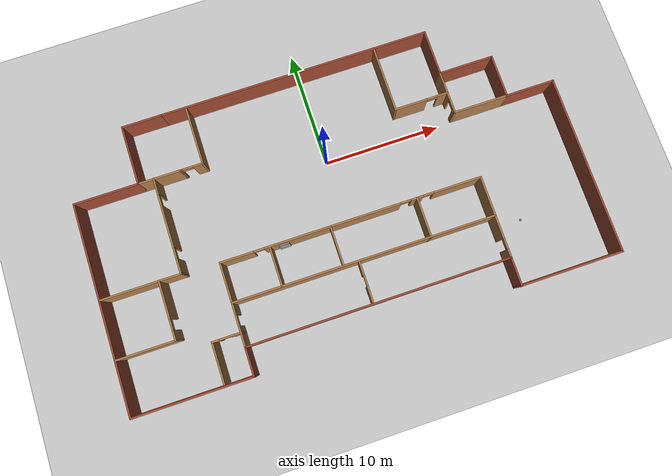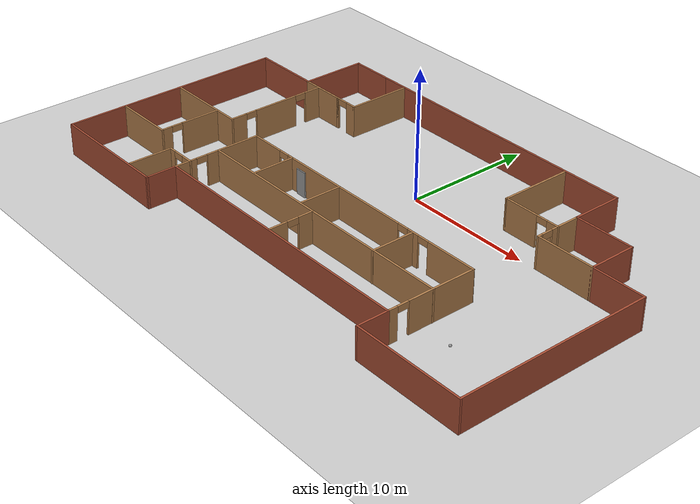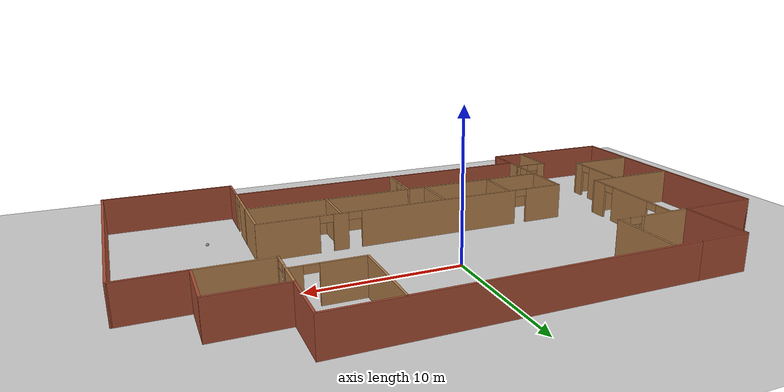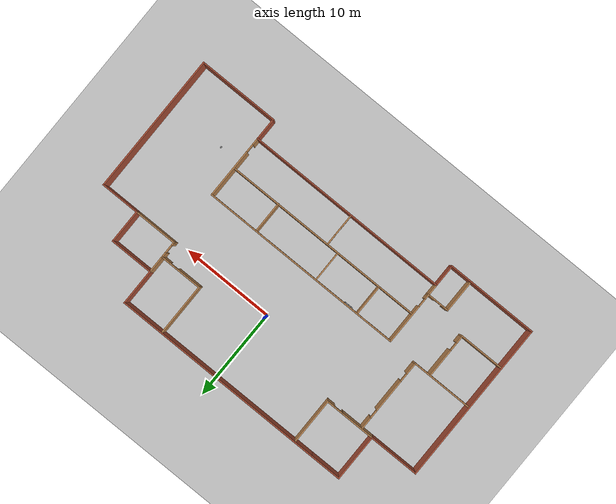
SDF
<sdf version="1.7">
 <world name="default">
  <light name="sun" type="directional">
   <pose>0 0 10 0 -0 0</pose>
   <diffuse>0.8 0.8 0.8 1</diffuse>
   <specular>0.2 0.2 0.2 1</specular>
   <attenuation>
    <range>1000</range>
    <constant>0.9</constant>
    <linear>0.01</linear>
    <quadratic>0.001</quadratic>
   </attenuation>
   <direction>-0.5 0.1 -0.9</direction>
   <spot><inner_angle>0</inner_angle><outer_angle>0</outer_angle><falloff>0</falloff></spot>
  </light>
  <model name="ground_plane">
   <static>1</static>
   <link name="link">
    <collision name="collision">
     <geometry><plane><normal>0 0 1</normal><size>100 100</size></plane></geometry>
     <surface>
      <contact><collide_bitmask>65535</collide_bitmask></contact>
      <friction><ode><mu>100</mu><mu2>50</mu2></ode></friction>
     </surface>
    </collision>
    <visual name="visual">
     <cast_shadows>0</cast_shadows>
     <geometry><plane><normal>0 0 1</normal><size>100 100</size></plane></geometry>
     <material>
      <script><uri>file://media/materials/scripts/gazebo.material</uri><name>Gazebo/Grey</name></script>
     </material>
    </visual>
   </link>
  </model>
  <gravity>0 0 -9.8</gravity>
  <magnetic_field>6e-06 2.3e-05 -4.2e-05</magnetic_field>
  <atmosphere type="adiabatic"/>
  <physics type="ode">
   <max_step_size>0.001</max_step_size>
   <real_time_factor>1</real_time_factor>
   <real_time_update_rate>1000</real_time_update_rate>
  </physics>
  <scene><ambient>0.4 0.4 0.4 1</ambient><background>0.7 0.7 0.7 1</background><shadows>1</shadows></scene>
  <spherical_coordinates>
   <surface_model>EARTH_WGS84</surface_model>
   <latitude_deg>0</latitude_deg>
   <longitude_deg>0</longitude_deg>
   <elevation>0</elevation>
   <heading_deg>0</heading_deg>
  </spherical_coordinates>
  <model name="model">
   <pose>-0.297809 -3.68836 0 0 -0 0</pose>
   <link name="Door_8">
    <collision name="Door_8_Collision">
     <geometry><box><size>0.9 0.17 2</size></box></geometry>
     <pose>0 0 1 0 -0 0</pose>
    </collision>
    <visual name="Door_8_Visual">
     <pose>0 0 1 0 -0 0</pose>
     <geometry><box><size>0.9 0.17 2</size></box></geometry>
     <material>
      <script><uri>file://media/materials/scripts/gazebo.material</uri><name>Gazebo/Grey</name></script>
     </material>
    </visual>
    <pose>-5.16966 -2.07672 0 0 -0 0</pose>
   </link>
   <link name="Wall_34">
    <collision name="Wall_34_Collision">
     <geometry><box><size>23.2038 0.15 2.5</size></box></geometry>
     <pose>0 0 1.25 0 -0 0</pose>
    </collision>
    <visual name="Wall_34_Visual">
     <pose>0 0 1.25 0 -0 0</pose>
     <geometry><box><size>23.2038 0.15 2.5</size></box></geometry>
     <material>
      <script><uri>file://media/materials/scripts/gazebo.material</uri><name>Gazebo/Bricks</name></script>
      <ambient>0.760784 0.662745 0.627451 1</ambient>
     </material>
     <meta><layer>0</layer></meta>
    </visual>
    <pose>0.04806 11.275 0 0 -0 1.2e-05</pose>
   </link>
   <link name="Wall_36">
    <collision name="Wall_36_Collision">
     <geometry><box><size>4 0.15 2.5</size></box></geometry>
     <pose>0 0 1.25 0 -0 0</pose>
    </collision>
    <visual name="Wall_36_Visual">
     <pose>0 0 1.25 0 -0 0</pose>
     <geometry><box><size>4 0.15 2.5</size></box></geometry>
     <material>
      <script><uri>file://media/materials/scripts/gazebo.material</uri><name>Gazebo/Bricks</name></script>
      <ambient>0.760784 0.662745 0.627451 1</ambient>
     </material>
     <meta><layer>0</layer></meta>
    </visual>
    <pose>11.5751 9.35 0 0 0 -1.57075</pose>
   </link>
   <link name="Wall_37">
    <collision name="Wall_37_Collision">
     <geometry><box><size>4.74984 0.15 2.5</size></box></geometry>
     <pose>0 0 1.25 0 -0 0</pose>
    </collision>
    <visual name="Wall_37_Visual">
     <pose>0 0 1.25 0 -0 0</pose>
     <geometry><box><size>4.74984 0.15 2.5</size></box></geometry>
     <material>
      <script><uri>file://media/materials/scripts/gazebo.material</uri><name>Gazebo/Bricks</name></script>
      <ambient>0.760784 0.662745 0.627451 1</ambient>
     </material>
     <meta><layer>0</layer></meta>
    </visual>
    <pose>13.8751 7.425 0 0 -0 6.1e-05</pose>
   </link>
   <link name="Wall_38">
    <collision name="Wall_38_Collision">
     <geometry><box><size>3.75 0.15 2.5</size></box></geometry>
     <pose>0 0 1.25 0 -0 0</pose>
    </collision>
    <visual name="Wall_38_Visual">
     <pose>0 0 1.25 0 -0 0</pose>
     <geometry><box><size>3.75 0.15 2.5</size></box></geometry>
     <material>
      <script><uri>file://media/materials/scripts/gazebo.material</uri><name>Gazebo/Bricks</name></script>
      <ambient>0.760784 0.662745 0.627451 1</ambient>
     </material>
     <meta><layer>0</layer></meta>
    </visual>
    <pose>16.1751 5.625 0 0 0 -1.57075</pose>
   </link>
   <link name="Wall_39">
    <collision name="Wall_39_Collision">
     <geometry><box><size>4.25 0.15 2.5</size></box></geometry>
     <pose>0 0 1.25 0 -0 0</pose>
    </collision>
    <visual name="Wall_39_Visual">
     <pose>0 0 1.25 0 -0 0</pose>
     <geometry><box><size>4.25 0.15 2.5</size></box></geometry>
     <material>
      <script><uri>file://media/materials/scripts/gazebo.material</uri><name>Gazebo/Bricks</name></script>
      <ambient>0.760784 0.662745 0.627451 1</ambient>
     </material>
     <meta><layer>0</layer></meta>
    </visual>
    <pose>18.2251 3.825 0 0 -0 6.9e-05</pose>
   </link>
   <link name="Wall_40">
    <collision name="Wall_40_Collision">
     <geometry><box><size>15.25 0.15 2.5</size></box></geometry>
     <pose>0 0 1.25 0 -0 0</pose>
    </collision>
    <visual name="Wall_40_Visual">
     <pose>0 0 1.25 0 -0 0</pose>
     <geometry><box><size>15.25 0.15 2.5</size></box></geometry>
     <material>
      <script><uri>file://media/materials/scripts/gazebo.material</uri><name>Gazebo/Bricks</name></script>
      <ambient>0.760784 0.662745 0.627451 1</ambient>
     </material>
     <meta><layer>0</layer></meta>
    </visual>
    <pose>20.275 -3.72486 0 0 0 -1.5708</pose>
   </link>
   <link name="Wall_41">
    <collision name="Wall_41_Collision">
     <geometry><box><size>8.75 0.15 2.5</size></box></geometry>
     <pose>0 0 1.25 0 -0 0</pose>
    </collision>
    <visual name="Wall_41_Visual">
     <pose>0 0 1.25 0 -0 0</pose>
     <geometry><box><size>8.75 0.15 2.5</size></box></geometry>
     <material>
      <script><uri>file://media/materials/scripts/gazebo.material</uri><name>Gazebo/Bricks</name></script>
      <ambient>0.760784 0.662745 0.627451 1</ambient>
     </material>
     <meta><layer>0</layer></meta>
    </visual>
    <pose>15.975 -11.2749 0 0 -0 3.14159</pose>
   </link>
   <link name="Wall_42">
    <collision name="Wall_42_Collision">
     <geometry><box><size>2.5 0.15 2.5</size></box></geometry>
     <pose>0 0 1.25 0 -0 0</pose>
    </collision>
    <visual name="Wall_42_Visual">
     <pose>0 0 1.25 0 -0 0</pose>
     <geometry><box><size>2.5 0.15 2.5</size></box></geometry>
     <material>
      <script><uri>file://media/materials/scripts/gazebo.material</uri><name>Gazebo/Bricks</name></script>
      <ambient>0.760784 0.662745 0.627451 1</ambient>
     </material>
     <meta><layer>0</layer></meta>
    </visual>
    <pose>11.675 -10.0999 0 0 -0 1.5708</pose>
   </link>
   <link name="Wall_43">
    <collision name="Wall_43_Collision">
     <geometry><box><size>22.25 0.15 2.5</size></box></geometry>
     <pose>0 0 1.25 0 -0 0</pose>
    </collision>
    <visual name="Wall_43_Visual">
     <pose>0 0 1.25 0 -0 0</pose>
     <geometry><box><size>22.25 0.15 2.5</size></box></geometry>
     <material>
      <script><uri>file://media/materials/scripts/gazebo.material</uri><name>Gazebo/Bricks</name></script>
      <ambient>0.760784 0.662745 0.627451 1</ambient>
     </material>
     <meta><layer>0</layer></meta>
    </visual>
    <pose>0.624981 -8.92486 0 0 -0 3.14159</pose>
   </link>
   <link name="Wall_44">
    <collision name="Wall_44_Collision">
     <geometry><box><size>2.5 0.15 2.5</size></box></geometry>
     <pose>0 0 1.25 0 -0 0</pose>
    </collision>
    <visual name="Wall_44_Visual">
     <pose>0 0 1.25 0 -0 0</pose>
     <geometry><box><size>2.5 0.15 2.5</size></box></geometry>
     <material>
      <script><uri>file://media/materials/scripts/gazebo.material</uri><name>Gazebo/Bricks</name></script>
      <ambient>0.760784 0.662745 0.627451 1</ambient>
     </material>
     <meta><layer>0</layer></meta>
    </visual>
    <pose>-10.425 -10.0999 0 0 0 -1.5708</pose>
   </link>
   <link name="Wall_45">
    <collision name="Wall_45_Collision">
     <geometry><box><size>10 0.15 2.5</size></box></geometry>
     <pose>0 0 1.25 0 -0 0</pose>
    </collision>
    <visual name="Wall_45_Visual">
     <pose>0 0 1.25 0 -0 0</pose>
     <geometry><box><size>10 0.15 2.5</size></box></geometry>
     <material>
      <script><uri>file://media/materials/scripts/gazebo.material</uri><name>Gazebo/Bricks</name></script>
      <ambient>0.760784 0.662745 0.627451 1</ambient>
     </material>
     <meta><layer>0</layer></meta>
    </visual>
    <pose>-15.3499 -11.275 0 0 0 -3.14156</pose>
   </link>
   <link name="Wall_46">
    <collision name="Wall_46_Collision">
     <geometry><box><size>17.685 0.15 2.5</size></box></geometry>
     <pose>0 0 1.25 0 -0 0</pose>
    </collision>
    <visual name="Wall_46_Visual">
     <pose>0 0 1.25 0 -0 0</pose>
     <geometry><box><size>17.685 0.15 2.5</size></box></geometry>
     <material>
      <script><uri>file://media/materials/scripts/gazebo.material</uri><name>Gazebo/Bricks</name></script>
      <ambient>0.760784 0.662745 0.627451 1</ambient>
     </material>
     <meta><layer>0</layer></meta>
    </visual>
    <pose>-20.2749 -2.50764 0 0 -0 1.5708</pose>
   </link>
   <link name="Wall_47">
    <collision name="Wall_47_Collision">
     <geometry><box><size>5.52741 0.15 2.5</size></box></geometry>
     <pose>0 0 1.25 0 -0 0</pose>
    </collision>
    <visual name="Wall_47_Visual">
     <pose>0 0 1.25 0 -0 0</pose>
     <geometry><box><size>5.52741 0.15 2.5</size></box></geometry>
     <material>
      <script><uri>file://media/materials/scripts/gazebo.material</uri><name>Gazebo/Bricks</name></script>
      <ambient>0.760784 0.662745 0.627451 1</ambient>
     </material>
     <meta><layer>0</layer></meta>
    </visual>
    <pose>-17.5864 6.25986 0 0 -0 0</pose>
   </link>
   <link name="Wall_48">
    <collision name="Wall_48_Collision">
     <geometry><box><size>5.16467 0.15 2.5</size></box></geometry>
     <pose>0 0 1.25 0 -0 0</pose>
    </collision>
    <visual name="Wall_48_Visual">
     <pose>0 0 1.25 0 -0 0</pose>
     <geometry><box><size>5.16467 0.15 2.5</size></box></geometry>
     <material>
      <script><uri>file://media/materials/scripts/gazebo.material</uri><name>Gazebo/Bricks</name></script>
      <ambient>0.760784 0.662745 0.627451 1</ambient>
     </material>
     <meta><layer>0</layer></meta>
    </visual>
    <pose>-14.8979 8.76736 0 0 -0 1.5708</pose>
   </link>
   <link name="Wall_49">
    <collision name="Wall_49_Collision">
     <geometry><box><size>3.569 0.15 2.5</size></box></geometry>
     <pose>0 0 1.25 0 -0 0</pose>
    </collision>
    <visual name="Wall_49_Visual">
     <pose>0 0 1.25 0 -0 0</pose>
     <geometry><box><size>3.569 0.15 2.5</size></box></geometry>
     <material>
      <script><uri>file://media/materials/scripts/gazebo.material</uri><name>Gazebo/Bricks</name></script>
      <ambient>0.760784 0.662745 0.627451 1</ambient>
     </material>
     <meta><layer>0</layer></meta>
    </visual>
    <pose>-13.1884 11.2749 0 0 -0 0</pose>
   </link>
   <link name="Wall_51">
    <collision name="Wall_51_Collision">
     <geometry><box><size>3.75 0.15 2.5</size></box></geometry>
     <pose>0 0 1.25 0 -0 0</pose>
    </collision>
    <visual name="Wall_51_Visual">
     <pose>0 0 1.25 0 -0 0</pose>
     <geometry><box><size>3.75 0.15 2.5</size></box></geometry>
     <material>
      <script><uri>file://media/materials/scripts/gazebo.material</uri><name>Gazebo/Wood</name></script>
      <ambient>0.996078 0.47451 0.0196078 1</ambient>
     </material>
     <meta><layer>0</layer></meta>
    </visual>
    <pose>-13.0979 6.25986 0 0 -0 0</pose>
   </link>
   <link name="Wall_52">
    <pose>-10.3729 6.25986 0 0 -0 0</pose>
    <visual name="Wall_52_Visual_0">
     <pose>-0.904318 0 1.25 0 -0 0</pose>
     <geometry><box><size>0.191363 0.15 2.5</size></box></geometry>
     <material>
      <script><uri>file://media/materials/scripts/gazebo.material</uri><name>Gazebo/Wood</name></script>
      <ambient>0.996078 0.47451 0.0196078 1</ambient>
     </material>
     <meta><layer>0</layer></meta>
    </visual>
    <collision name="Wall_52_Collision_0">
     <geometry><box><size>0.191363 0.15 2.5</size></box></geometry>
     <pose>-0.904318 0 1.25 0 -0 0</pose>
    </collision>
    <visual name="Wall_52_Visual_1">
     <pose>0.545682 0 1.25 0 -0 0</pose>
     <geometry><box><size>0.908637 0.15 2.5</size></box></geometry>
     <material>
      <script><uri>file://media/materials/scripts/gazebo.material</uri><name>Gazebo/Wood</name></script>
      <ambient>0.996078 0.47451 0.0196078 1</ambient>
     </material>
     <meta><layer>0</layer></meta>
    </visual>
    <collision name="Wall_52_Collision_1">
     <geometry><box><size>0.908637 0.15 2.5</size></box></geometry>
     <pose>0.545682 0 1.25 0 -0 0</pose>
    </collision>
    <visual name="Wall_52_Visual_2">
     <pose>-0.358637 0 2.25 0 -0 0</pose>
     <geometry><box><size>0.9 0.15 0.5</size></box></geometry>
     <material>
      <script><uri>file://media/materials/scripts/gazebo.material</uri><name>Gazebo/Wood</name></script>
      <ambient>0.996078 0.47451 0.0196078 1</ambient>
     </material>
     <meta><layer>0</layer></meta>
    </visual>
    <collision name="Wall_52_Collision_2">
     <geometry><box><size>0.9 0.15 0.5</size></box></geometry>
     <pose>-0.358637 0 2.25 0 -0 0</pose>
    </collision>
   </link>
   <link name="Wall_53">
    <collision name="Wall_53_Collision">
     <geometry><box><size>5 0.15 2.5</size></box></geometry>
     <pose>0 0 1.25 0 -0 0</pose>
    </collision>
    <visual name="Wall_53_Visual">
     <pose>0 0 1.25 0 -0 0</pose>
     <geometry><box><size>5 0.15 2.5</size></box></geometry>
     <material>
      <script><uri>file://media/materials/scripts/gazebo.material</uri><name>Gazebo/Wood</name></script>
      <ambient>0.996078 0.47451 0.0196078 1</ambient>
     </material>
     <meta><layer>0</layer></meta>
    </visual>
    <pose>-9.44786 8.68486 0 0 -0 1.5708</pose>
   </link>
   <link name="Wall_55">
    <pose>-13.5999 2.19855 0 0 0 -1.5708</pose>
    <visual name="Wall_55_Visual_0">
     <pose>-3.40302 0 1.25 0 -0 0</pose>
     <geometry><box><size>1.44397 0.15 2.5</size></box></geometry>
     <material>
      <script><uri>file://media/materials/scripts/gazebo.material</uri><name>Gazebo/Wood</name></script>
      <ambient>0.996078 0.47451 0.0196078 1</ambient>
     </material>
     <meta><layer>0</layer></meta>
    </visual>
    <collision name="Wall_55_Collision_0">
     <geometry><box><size>1.44397 0.15 2.5</size></box></geometry>
     <pose>-3.40302 0 1.25 0 -0 0</pose>
    </collision>
    <visual name="Wall_55_Visual_1">
     <pose>0.042675 0 1.25 0 -0 0</pose>
     <geometry><box><size>3.64742 0.15 2.5</size></box></geometry>
     <material>
      <script><uri>file://media/materials/scripts/gazebo.material</uri><name>Gazebo/Wood</name></script>
      <ambient>0.996078 0.47451 0.0196078 1</ambient>
     </material>
     <meta><layer>0</layer></meta>
    </visual>
    <collision name="Wall_55_Collision_1">
     <geometry><box><size>3.64742 0.15 2.5</size></box></geometry>
     <pose>0.042675 0 1.25 0 -0 0</pose>
    </collision>
    <visual name="Wall_55_Visual_2">
     <pose>3.44569 0 1.25 0 -0 0</pose>
     <geometry><box><size>1.35862 0.15 2.5</size></box></geometry>
     <material>
      <script><uri>file://media/materials/scripts/gazebo.material</uri><name>Gazebo/Wood</name></script>
      <ambient>0.996078 0.47451 0.0196078 1</ambient>
     </material>
     <meta><layer>0</layer></meta>
    </visual>
    <collision name="Wall_55_Collision_2">
     <geometry><box><size>1.35862 0.15 2.5</size></box></geometry>
     <pose>3.44569 0 1.25 0 -0 0</pose>
    </collision>
    <visual name="Wall_55_Visual_3">
     <pose>-2.23103 0 2.25 0 -0 0</pose>
     <geometry><box><size>0.9 0.15 0.5</size></box></geometry>
     <material>
      <script><uri>file://media/materials/scripts/gazebo.material</uri><name>Gazebo/Wood</name></script>
      <ambient>0.996078 0.47451 0.0196078 1</ambient>
     </material>
     <meta><layer>0</layer></meta>
    </visual>
    <collision name="Wall_55_Collision_3">
     <geometry><box><size>0.9 0.15 0.5</size></box></geometry>
     <pose>-2.23103 0 2.25 0 -0 0</pose>
    </collision>
    <visual name="Wall_55_Visual_4">
     <pose>2.31638 0 2.25 0 -0 0</pose>
     <geometry><box><size>0.9 0.15 0.5</size></box></geometry>
     <material>
      <script><uri>file://media/materials/scripts/gazebo.material</uri><name>Gazebo/Wood</name></script>
      <ambient>0.996078 0.47451 0.0196078 1</ambient>
     </material>
     <meta><layer>0</layer></meta>
    </visual>
    <collision name="Wall_55_Collision_4">
     <geometry><box><size>0.9 0.15 0.5</size></box></geometry>
     <pose>2.31638 0 2.25 0 -0 0</pose>
    </collision>
   </link>
   <link name="Wall_56">
    <collision name="Wall_56_Collision">
     <geometry><box><size>6.75 0.15 2.5</size></box></geometry>
     <pose>0 0 1.25 0 -0 0</pose>
    </collision>
    <visual name="Wall_56_Visual">
     <pose>0 0 1.25 0 -0 0</pose>
     <geometry><box><size>6.75 0.15 2.5</size></box></geometry>
     <material>
      <script><uri>file://media/materials/scripts/gazebo.material</uri><name>Gazebo/Wood</name></script>
      <ambient>0.996078 0.47451 0.0196078 1</ambient>
     </material>
     <meta><layer>0</layer></meta>
    </visual>
    <pose>-16.8999 -1.85145 0 0 -0 3.14159</pose>
   </link>
   <link name="Wall_58">
    <pose>-15.4188 -4.29183 0 0 0 -1.5708</pose>
    <visual name="Wall_58_Visual_0">
     <pose>-0.903514 0 1.25 0 -0 0</pose>
     <geometry><box><size>3.19297 0.15 2.5</size></box></geometry>
     <material>
      <script><uri>file://media/materials/scripts/gazebo.material</uri><name>Gazebo/Wood</name></script>
      <ambient>0.996078 0.47451 0.0196078 1</ambient>
     </material>
     <meta><layer>0</layer></meta>
    </visual>
    <collision name="Wall_58_Collision_0">
     <geometry><box><size>3.19297 0.15 2.5</size></box></geometry>
     <pose>-0.903514 0 1.25 0 -0 0</pose>
    </collision>
    <visual name="Wall_58_Visual_1">
     <pose>2.04649 0 1.25 0 -0 0</pose>
     <geometry><box><size>0.907027 0.15 2.5</size></box></geometry>
     <material>
      <script><uri>file://media/materials/scripts/gazebo.material</uri><name>Gazebo/Wood</name></script>
      <ambient>0.996078 0.47451 0.0196078 1</ambient>
     </material>
     <meta><layer>0</layer></meta>
    </visual>
    <collision name="Wall_58_Collision_1">
     <geometry><box><size>0.907027 0.15 2.5</size></box></geometry>
     <pose>2.04649 0 1.25 0 -0 0</pose>
    </collision>
    <visual name="Wall_58_Visual_2">
     <pose>1.14297 0 2.25 0 -0 0</pose>
     <geometry><box><size>0.9 0.15 0.5</size></box></geometry>
     <material>
      <script><uri>file://media/materials/scripts/gazebo.material</uri><name>Gazebo/Wood</name></script>
      <ambient>0.996078 0.47451 0.0196078 1</ambient>
     </material>
     <meta><layer>0</layer></meta>
    </visual>
    <collision name="Wall_58_Collision_2">
     <geometry><box><size>0.9 0.15 0.5</size></box></geometry>
     <pose>1.14297 0 2.25 0 -0 0</pose>
    </collision>
   </link>
   <link name="Wall_59">
    <collision name="Wall_59_Collision">
     <geometry><box><size>5 0.15 2.5</size></box></geometry>
     <pose>0 0 1.25 0 -0 0</pose>
    </collision>
    <visual name="Wall_59_Visual">
     <pose>0 0 1.25 0 -0 0</pose>
     <geometry><box><size>5 0.15 2.5</size></box></geometry>
     <material>
      <script><uri>file://media/materials/scripts/gazebo.material</uri><name>Gazebo/Wood</name></script>
      <ambient>0.996078 0.47451 0.0196078 1</ambient>
     </material>
     <meta><layer>0</layer></meta>
    </visual>
    <pose>-17.8438 -6.71683 0 0 -0 3.14159</pose>
   </link>
   <link name="Wall_61">
    <pose>-10.425 -5.47773 0 0 -0 1.5708</pose>
    <visual name="Wall_61_Visual_0">
     <pose>-2.62923 0 1.25 0 -0 0</pose>
     <geometry><box><size>1.78581 0.15 2.5</size></box></geometry>
     <material>
      <script><uri>file://media/materials/scripts/gazebo.material</uri><name>Gazebo/Wood</name></script>
      <ambient>0.435294 0.796078 0.67451 1</ambient>
     </material>
     <meta><layer>0</layer></meta>
    </visual>
    <collision name="Wall_61_Collision_0">
     <geometry><box><size>1.78581 0.15 2.5</size></box></geometry>
     <pose>-2.62923 0 1.25 0 -0 0</pose>
    </collision>
    <visual name="Wall_61_Visual_1">
     <pose>1.3429 0 1.25 0 -0 0</pose>
     <geometry><box><size>4.35846 0.15 2.5</size></box></geometry>
     <material>
      <script><uri>file://media/materials/scripts/gazebo.material</uri><name>Gazebo/Wood</name></script>
      <ambient>0.435294 0.796078 0.67451 1</ambient>
     </material>
     <meta><layer>0</layer></meta>
    </visual>
    <collision name="Wall_61_Collision_1">
     <geometry><box><size>4.35846 0.15 2.5</size></box></geometry>
     <pose>1.3429 0 1.25 0 -0 0</pose>
    </collision>
    <visual name="Wall_61_Visual_2">
     <pose>-1.28633 0 2.25 0 -0 0</pose>
     <geometry><box><size>0.9 0.15 0.5</size></box></geometry>
     <material>
      <script><uri>file://media/materials/scripts/gazebo.material</uri><name>Gazebo/Wood</name></script>
      <ambient>0.435294 0.796078 0.67451 1</ambient>
     </material>
     <meta><layer>0</layer></meta>
    </visual>
    <collision name="Wall_61_Collision_2">
     <geometry><box><size>0.9 0.15 0.5</size></box></geometry>
     <pose>-1.28633 0 2.25 0 -0 0</pose>
    </collision>
   </link>
   <link name="Wall_62">
    <pose>0.624981 -1.99561 0 0 -0 0</pose>
    <visual name="Wall_62_Visual_0">
     <pose>-9.69924 0 1.25 0 -0 0</pose>
     <geometry><box><size>2.85151 0.15 2.5</size></box></geometry>
     <material>
      <script><uri>file://media/materials/scripts/gazebo.material</uri><name>Gazebo/Wood</name></script>
      <ambient>0.435294 0.796078 0.67451 1</ambient>
     </material>
     <meta><layer>0</layer></meta>
    </visual>
    <collision name="Wall_62_Collision_0">
     <geometry><box><size>2.85151 0.15 2.5</size></box></geometry>
     <pose>-9.69924 0 1.25 0 -0 0</pose>
    </collision>
    <visual name="Wall_62_Visual_1">
     <pose>-1.59702 0 1.25 0 -0 0</pose>
     <geometry><box><size>11.5529 0.15 2.5</size></box></geometry>
     <material>
      <script><uri>file://media/materials/scripts/gazebo.material</uri><name>Gazebo/Wood</name></script>
      <ambient>0.435294 0.796078 0.67451 1</ambient>
     </material>
     <meta><layer>0</layer></meta>
    </visual>
    <collision name="Wall_62_Collision_1">
     <geometry><box><size>11.5529 0.15 2.5</size></box></geometry>
     <pose>-1.59702 0 1.25 0 -0 0</pose>
    </collision>
    <visual name="Wall_62_Visual_2">
     <pose>5.59139 0 1.25 0 -0 0</pose>
     <geometry><box><size>1.02391 0.15 2.5</size></box></geometry>
     <material>
      <script><uri>file://media/materials/scripts/gazebo.material</uri><name>Gazebo/Wood</name></script>
      <ambient>0.435294 0.796078 0.67451 1</ambient>
     </material>
     <meta><layer>0</layer></meta>
    </visual>
    <collision name="Wall_62_Collision_2">
     <geometry><box><size>1.02391 0.15 2.5</size></box></geometry>
     <pose>5.59139 0 1.25 0 -0 0</pose>
    </collision>
    <visual name="Wall_62_Visual_3">
     <pose>9.06417 0 1.25 0 -0 0</pose>
     <geometry><box><size>4.12166 0.15 2.5</size></box></geometry>
     <material>
      <script><uri>file://media/materials/scripts/gazebo.material</uri><name>Gazebo/Wood</name></script>
      <ambient>0.435294 0.796078 0.67451 1</ambient>
     </material>
     <meta><layer>0</layer></meta>
    </visual>
    <collision name="Wall_62_Collision_3">
     <geometry><box><size>4.12166 0.15 2.5</size></box></geometry>
     <pose>9.06417 0 1.25 0 -0 0</pose>
    </collision>
    <visual name="Wall_62_Visual_4">
     <pose>-7.82349 0 2.25 0 -0 0</pose>
     <geometry><box><size>0.9 0.15 0.5</size></box></geometry>
     <material>
      <script><uri>file://media/materials/scripts/gazebo.material</uri><name>Gazebo/Wood</name></script>
      <ambient>0.435294 0.796078 0.67451 1</ambient>
     </material>
     <meta><layer>0</layer></meta>
    </visual>
    <collision name="Wall_62_Collision_4">
     <geometry><box><size>0.9 0.15 0.5</size></box></geometry>
     <pose>-7.82349 0 2.25 0 -0 0</pose>
    </collision>
    <visual name="Wall_62_Visual_5">
     <pose>4.62944 0 2.25 0 -0 0</pose>
     <geometry><box><size>0.9 0.15 0.5</size></box></geometry>
     <material>
      <script><uri>file://media/materials/scripts/gazebo.material</uri><name>Gazebo/Wood</name></script>
      <ambient>0.435294 0.796078 0.67451 1</ambient>
     </material>
     <meta><layer>0</layer></meta>
    </visual>
    <collision name="Wall_62_Collision_5">
     <geometry><box><size>0.9 0.15 0.5</size></box></geometry>
     <pose>4.62944 0 2.25 0 -0 0</pose>
    </collision>
    <visual name="Wall_62_Visual_6">
     <pose>6.55334 0 2.25 0 -0 0</pose>
     <geometry><box><size>0.9 0.15 0.5</size></box></geometry>
     <material>
      <script><uri>file://media/materials/scripts/gazebo.material</uri><name>Gazebo/Wood</name></script>
      <ambient>0.435294 0.796078 0.67451 1</ambient>
     </material>
     <meta><layer>0</layer></meta>
    </visual>
    <collision name="Wall_62_Collision_6">
     <geometry><box><size>0.9 0.15 0.5</size></box></geometry>
     <pose>6.55334 0 2.25 0 -0 0</pose>
    </collision>
   </link>
   <link name="Wall_63">
    <pose>11.675 -5.47773 0 0 0 -1.5708</pose>
    <visual name="Wall_63_Visual_0">
     <pose>-0.853181 0 1.25 0 -0 0</pose>
     <geometry><box><size>5.3379 0.15 2.5</size></box></geometry>
     <material>
      <script><uri>file://media/materials/scripts/gazebo.material</uri><name>Gazebo/Wood</name></script>
      <ambient>0.435294 0.796078 0.67451 1</ambient>
     </material>
     <meta><layer>0</layer></meta>
    </visual>
    <collision name="Wall_63_Collision_0">
     <geometry><box><size>5.3379 0.15 2.5</size></box></geometry>
     <pose>-0.853181 0 1.25 0 -0 0</pose>
    </collision>
    <visual name="Wall_63_Visual_1">
     <pose>3.11895 0 1.25 0 -0 0</pose>
     <geometry><box><size>0.806362 0.15 2.5</size></box></geometry>
     <material>
      <script><uri>file://media/materials/scripts/gazebo.material</uri><name>Gazebo/Wood</name></script>
      <ambient>0.435294 0.796078 0.67451 1</ambient>
     </material>
     <meta><layer>0</layer></meta>
    </visual>
    <collision name="Wall_63_Collision_1">
     <geometry><box><size>0.806362 0.15 2.5</size></box></geometry>
     <pose>3.11895 0 1.25 0 -0 0</pose>
    </collision>
    <visual name="Wall_63_Visual_2">
     <pose>2.26577 0 2.25 0 -0 0</pose>
     <geometry><box><size>0.9 0.15 0.5</size></box></geometry>
     <material>
      <script><uri>file://media/materials/scripts/gazebo.material</uri><name>Gazebo/Wood</name></script>
      <ambient>0.435294 0.796078 0.67451 1</ambient>
     </material>
     <meta><layer>0</layer></meta>
    </visual>
    <collision name="Wall_63_Collision_2">
     <geometry><box><size>0.9 0.15 0.5</size></box></geometry>
     <pose>2.26577 0 2.25 0 -0 0</pose>
    </collision>
   </link>
   <link name="Wall_65">
    <pose>-11.5917 -7.7435 0 0 -0 3.14159</pose>
    <visual name="Wall_65_Visual_0">
     <pose>-0.772878 0 1.25 0 -0 0</pose>
     <geometry><box><size>0.954243 0.15 2.5</size></box></geometry>
     <material>
      <script><uri>file://media/materials/scripts/gazebo.material</uri><name>Gazebo/Wood</name></script>
      <ambient>1 1 1 1</ambient>
     </material>
     <meta><layer>0</layer></meta>
    </visual>
    <collision name="Wall_65_Collision_0">
     <geometry><box><size>0.954243 0.15 2.5</size></box></geometry>
     <pose>-0.772878 0 1.25 0 -0 0</pose>
    </collision>
    <visual name="Wall_65_Visual_1">
     <pose>0.927122 0 1.25 0 -0 0</pose>
     <geometry><box><size>0.645757 0.15 2.5</size></box></geometry>
     <material>
      <script><uri>file://media/materials/scripts/gazebo.material</uri><name>Gazebo/Wood</name></script>
      <ambient>1 1 1 1</ambient>
     </material>
     <meta><layer>0</layer></meta>
    </visual>
    <collision name="Wall_65_Collision_1">
     <geometry><box><size>0.645757 0.15 2.5</size></box></geometry>
     <pose>0.927122 0 1.25 0 -0 0</pose>
    </collision>
    <visual name="Wall_65_Visual_2">
     <pose>0.154243 0 2.25 0 -0 0</pose>
     <geometry><box><size>0.9 0.15 0.5</size></box></geometry>
     <material>
      <script><uri>file://media/materials/scripts/gazebo.material</uri><name>Gazebo/Wood</name></script>
      <ambient>1 1 1 1</ambient>
     </material>
     <meta><layer>0</layer></meta>
    </visual>
    <collision name="Wall_65_Collision_2">
     <geometry><box><size>0.9 0.15 0.5</size></box></geometry>
     <pose>0.154243 0 2.25 0 -0 0</pose>
    </collision>
   </link>
   <link name="Wall_66">
    <collision name="Wall_66_Collision">
     <geometry><box><size>3.5 0.15 2.5</size></box></geometry>
     <pose>0 0 1.25 0 -0 0</pose>
    </collision>
    <visual name="Wall_66_Visual">
     <pose>0 0 1.25 0 -0 0</pose>
     <geometry><box><size>3.5 0.15 2.5</size></box></geometry>
     <material>
      <script><uri>file://media/materials/scripts/gazebo.material</uri><name>Gazebo/Wood</name></script>
      <ambient>0.435294 0.796078 0.67451 1</ambient>
     </material>
     <meta><layer>0</layer></meta>
    </visual>
    <pose>-12.7667 -9.4185 0 0 0 -1.5708</pose>
   </link>
   <link name="Wall_68">
    <collision name="Wall_68_Collision">
     <geometry><box><size>22.25 0.15 2.5</size></box></geometry>
     <pose>0 0 1.25 0 -0 0</pose>
    </collision>
    <visual name="Wall_68_Visual">
     <pose>0 0 1.25 0 -0 0</pose>
     <geometry><box><size>22.25 0.15 2.5</size></box></geometry>
     <material>
      <script><uri>file://media/materials/scripts/gazebo.material</uri><name>Gazebo/Wood</name></script>
      <ambient>0.435294 0.796078 0.67451 1</ambient>
     </material>
     <meta><layer>0</layer></meta>
    </visual>
    <pose>0.633323 -5.32987 0 0 -0 0</pose>
   </link>
   <link name="Wall_71">
    <pose>0.112139 -7.07714 0 0 0 -1.5708</pose>
    <visual name="Wall_71_Visual_0">
     <pose>-1.1891 0 1.25 0 -0 0</pose>
     <geometry><box><size>1.27179 0.15 2.5</size></box></geometry>
     <material>
      <script><uri>file://media/materials/scripts/gazebo.material</uri><name>Gazebo/Wood</name></script>
      <ambient>0.435294 0.796078 0.67451 1</ambient>
     </material>
     <meta><layer>0</layer></meta>
    </visual>
    <collision name="Wall_71_Collision_0">
     <geometry><box><size>1.27179 0.15 2.5</size></box></geometry>
     <pose>-1.1891 0 1.25 0 -0 0</pose>
    </collision>
    <visual name="Wall_71_Visual_1">
     <pose>1.0859 0 1.25 0 -0 0</pose>
     <geometry><box><size>1.47821 0.15 2.5</size></box></geometry>
     <material>
      <script><uri>file://media/materials/scripts/gazebo.material</uri><name>Gazebo/Wood</name></script>
      <ambient>0.435294 0.796078 0.67451 1</ambient>
     </material>
     <meta><layer>0</layer></meta>
    </visual>
    <collision name="Wall_71_Collision_1">
     <geometry><box><size>1.47821 0.15 2.5</size></box></geometry>
     <pose>1.0859 0 1.25 0 -0 0</pose>
    </collision>
    <visual name="Wall_71_Visual_2">
     <pose>-0.103206 0 2.25 0 -0 0</pose>
     <geometry><box><size>0.9 0.15 0.5</size></box></geometry>
     <material>
      <script><uri>file://media/materials/scripts/gazebo.material</uri><name>Gazebo/Wood</name></script>
      <ambient>0.435294 0.796078 0.67451 1</ambient>
     </material>
     <meta><layer>0</layer></meta>
    </visual>
    <collision name="Wall_71_Collision_2">
     <geometry><box><size>0.9 0.15 0.5</size></box></geometry>
     <pose>-0.103206 0 2.25 0 -0 0</pose>
    </collision>
   </link>
   <link name="Wall_73">
    <collision name="Wall_73_Collision">
     <geometry><box><size>3.5 0.15 2.5</size></box></geometry>
     <pose>0 0 1.25 0 -0 0</pose>
    </collision>
    <visual name="Wall_73_Visual">
     <pose>0 0 1.25 0 -0 0</pose>
     <geometry><box><size>3.5 0.15 2.5</size></box></geometry>
     <material>
      <script><uri>file://media/materials/scripts/gazebo.material</uri><name>Gazebo/Wood</name></script>
      <ambient>0.435294 0.796078 0.67451 1</ambient>
     </material>
     <meta><layer>0</layer></meta>
    </visual>
    <pose>6.19888 -3.68176 0 0 0 -1.5708</pose>
   </link>
   <link name="Wall_75">
    <collision name="Wall_75_Collision">
     <geometry><box><size>3.37 0.15 2.5</size></box></geometry>
     <pose>0 0 1.25 0 -0 0</pose>
    </collision>
    <visual name="Wall_75_Visual">
     <pose>0 0 1.25 0 -0 0</pose>
     <geometry><box><size>3.37 0.15 2.5</size></box></geometry>
     <material>
      <script><uri>file://media/materials/scripts/gazebo.material</uri><name>Gazebo/Wood</name></script>
      <ambient>0.435294 0.796078 0.67451 1</ambient>
     </material>
     <meta><layer>0</layer></meta>
    </visual>
    <pose>-1.18186 -3.61714 0 0 0 -1.5708</pose>
   </link>
   <link name="Wall_78">
    <collision name="Wall_78_Collision">
     <geometry><box><size>3.41 0.15 2.5</size></box></geometry>
     <pose>0 0 1.25 0 -0 0</pose>
    </collision>
    <visual name="Wall_78_Visual">
     <pose>0 0 1.25 0 -0 0</pose>
     <geometry><box><size>3.41 0.15 2.5</size></box></geometry>
     <material>
      <script><uri>file://media/materials/scripts/gazebo.material</uri><name>Gazebo/Wood</name></script>
      <ambient>0.435294 0.796078 0.67451 1</ambient>
     </material>
     <meta><layer>0</layer></meta>
    </visual>
    <pose>-6.28886 -3.65714 0 0 0 -1.5708</pose>
   </link>
   <link name="Wall_80">
    <collision name="Wall_80_Collision">
     <geometry><box><size>5.75 0.15 2.5</size></box></geometry>
     <pose>0 0 1.25 0 -0 0</pose>
    </collision>
    <visual name="Wall_80_Visual">
     <pose>0 0 1.25 0 -0 0</pose>
     <geometry><box><size>5.75 0.15 2.5</size></box></geometry>
     <material>
      <script><uri>file://media/materials/scripts/gazebo.material</uri><name>Gazebo/Wood</name></script>
      <ambient>1 0.764706 0.305882 1</ambient>
     </material>
     <meta><layer>0</layer></meta>
    </visual>
    <pose>7.00329 8.41576 0 0 0 -1.5708</pose>
   </link>
   <link name="Wall_88">
    <pose>9.28922 5.61581 0 0 -0 2.2e-05</pose>
    <visual name="Wall_88_Visual_0">
     <pose>-0.939338 0 1.25 0 -0 0</pose>
     <geometry><box><size>2.84317 0.15 2.5</size></box></geometry>
     <material>
      <script><uri>file://media/materials/scripts/gazebo.material</uri><name>Gazebo/Wood</name></script>
      <ambient>1 0.764706 0.305882 1</ambient>
     </material>
     <meta><layer>0</layer></meta>
    </visual>
    <collision name="Wall_88_Collision_0">
     <geometry><box><size>2.84317 0.15 2.5</size></box></geometry>
     <pose>-0.939338 0 1.25 0 -0 0</pose>
    </collision>
    <visual name="Wall_88_Visual_1">
     <pose>1.87159 0 1.25 0 -0 0</pose>
     <geometry><box><size>0.978675 0.15 2.5</size></box></geometry>
     <material>
      <script><uri>file://media/materials/scripts/gazebo.material</uri><name>Gazebo/Wood</name></script>
      <ambient>1 0.764706 0.305882 1</ambient>
     </material>
     <meta><layer>0</layer></meta>
    </visual>
    <collision name="Wall_88_Collision_1">
     <geometry><box><size>0.978675 0.15 2.5</size></box></geometry>
     <pose>1.87159 0 1.25 0 -0 0</pose>
    </collision>
    <visual name="Wall_88_Visual_2">
     <pose>0.932248 0 2.25 0 -0 0</pose>
     <geometry><box><size>0.9 0.15 0.5</size></box></geometry>
     <material>
      <script><uri>file://media/materials/scripts/gazebo.material</uri><name>Gazebo/Wood</name></script>
      <ambient>1 0.764706 0.305882 1</ambient>
     </material>
     <meta><layer>0</layer></meta>
    </visual>
    <collision name="Wall_88_Collision_2">
     <geometry><box><size>0.9 0.15 0.5</size></box></geometry>
     <pose>0.932248 0 2.25 0 -0 0</pose>
    </collision>
   </link>
   <link name="Wall_89">
    <collision name="Wall_89_Collision">
     <geometry><box><size>1.95932 0.15 2.5</size></box></geometry>
     <pose>0 0 1.25 0 -0 0</pose>
    </collision>
    <visual name="Wall_89_Visual">
     <pose>0 0 1.25 0 -0 0</pose>
     <geometry><box><size>1.95932 0.15 2.5</size></box></geometry>
     <material>
      <script><uri>file://media/materials/scripts/gazebo.material</uri><name>Gazebo/Wood</name></script>
      <ambient>1 0.764706 0.305882 1</ambient>
     </material>
     <meta><layer>0</layer></meta>
    </visual>
    <pose>11.5751 6.52036 0 0 -0 1.5708</pose>
   </link>
   <link name="Wall_91">
    <collision name="Wall_91_Collision">
     <geometry><box><size>4.75 0.15 2.5</size></box></geometry>
     <pose>0 0 1.25 0 -0 0</pose>
    </collision>
    <visual name="Wall_91_Visual">
     <pose>0 0 1.25 0 -0 0</pose>
     <geometry><box><size>4.75 0.15 2.5</size></box></geometry>
     <material>
      <script><uri>file://media/materials/scripts/gazebo.material</uri><name>Gazebo/Wood</name></script>
      <ambient>1 0.764706 0.305882 1</ambient>
     </material>
     <meta><layer>0</layer></meta>
    </visual>
    <pose>13.8751 3.82486 0 0 -0 3.14159</pose>
   </link>
   <link name="Wall_92">
    <pose>11.5751 4.72036 0 0 -0 1.5708</pose>
    <visual name="Wall_92_Visual_0">
     <pose>-0.761176 0 1.25 0 -0 0</pose>
     <geometry><box><size>0.418647 0.15 2.5</size></box></geometry>
     <material>
      <script><uri>file://media/materials/scripts/gazebo.material</uri><name>Gazebo/Wood</name></script>
      <ambient>1 0.764706 0.305882 1</ambient>
     </material>
     <meta><layer>0</layer></meta>
    </visual>
    <collision name="Wall_92_Collision_0">
     <geometry><box><size>0.418647 0.15 2.5</size></box></geometry>
     <pose>-0.761176 0 1.25 0 -0 0</pose>
    </collision>
    <visual name="Wall_92_Visual_1">
     <pose>0.659324 0 1.25 0 -0 0</pose>
     <geometry><box><size>0.622353 0.15 2.5</size></box></geometry>
     <material>
      <script><uri>file://media/materials/scripts/gazebo.material</uri><name>Gazebo/Wood</name></script>
      <ambient>1 0.764706 0.305882 1</ambient>
     </material>
     <meta><layer>0</layer></meta>
    </visual>
    <collision name="Wall_92_Collision_1">
     <geometry><box><size>0.622353 0.15 2.5</size></box></geometry>
     <pose>0.659324 0 1.25 0 -0 0</pose>
    </collision>
    <visual name="Wall_92_Visual_2">
     <pose>-0.101853 0 2.25 0 -0 0</pose>
     <geometry><box><size>0.9 0.15 0.5</size></box></geometry>
     <material>
      <script><uri>file://media/materials/scripts/gazebo.material</uri><name>Gazebo/Wood</name></script>
      <ambient>1 0.764706 0.305882 1</ambient>
     </material>
     <meta><layer>0</layer></meta>
    </visual>
    <collision name="Wall_92_Collision_2">
     <geometry><box><size>0.9 0.15 0.5</size></box></geometry>
     <pose>-0.101853 0 2.25 0 -0 0</pose>
    </collision>
   </link>
   <static>1</static>
  </model>
  <model name="white_ball">
   <link name="link">
    <inertial>
     <mass>1</mass>
     <inertia><ixx>0.1</ixx><ixy>0</ixy><ixz>0</ixz><iyy>0.1</iyy><iyz>0</iyz><izz>0.1</izz></inertia>
    </inertial>
    <pose>-1.05184 -1.30466 0 0 -0 0</pose>
    <visual name="visual">
     <geometry><sphere><radius>0.1</radius></sphere></geometry>
     <material>
      <script><name>Gazebo/Grey</name><uri>file://media/materials/scripts/gazebo.material</uri></script>
      <shader type="pixel"><normal_map>__default__</normal_map></shader>
      <ambient>1 1 1 1</ambient>
      <diffuse>1 1 1 1</diffuse>
      <specular>1 1 1 1</specular>
      <emissive>1 1 1 1</emissive>
     </material>
    </visual>
    <collision name="collision">
     <geometry><sphere><radius>0.1</radius></sphere></geometry>
     <surface>
      <friction>
       <ode><mu>1</mu><mu2>1</mu2><fdir1>0 0 0</fdir1><slip1>0</slip1><slip2>0</slip2></ode>
       <torsional>
        <coefficient>1</coefficient>
        <patch_radius>0</patch_radius>
        <surface_radius>0</surface_radius>
        <use_patch_radius>1</use_patch_radius>
        <ode><slip>0</slip></ode>
       </torsional>
      </friction>
      <bounce><restitution_coefficient>0</restitution_coefficient><threshold>1e+06</threshold></bounce>
      <contact>
       <collide_without_contact>0</collide_without_contact>
       <collide_without_contact_bitmask>1</collide_without_contact_bitmask>
       <collide_bitmask>1</collide_bitmask>
       <ode>
        <soft_cfm>0</soft_cfm>
        <soft_erp>0.2</soft_erp>
        <kp>1e+13</kp>
        <kd>1</kd>
        <max_vel>0.01</max_vel>
        <min_depth>0</min_depth>
       </ode>
       <bullet>
        <split_impulse>1</split_impulse>
        <split_impulse_penetration_threshold>-0.01</split_impulse_penetration_threshold>
        <soft_cfm>0</soft_cfm>
        <soft_erp>0.2</soft_erp>
        <kp>1e+13</kp>
        <kd>1</kd>
       </bullet>
      </contact>
     </surface>
    </collision>
   </link>
   <static>0</static>
   <pose>14.9534 -8.53814 0.1 0 -0 0</pose>
  </model>
 </world>
</sdf>
